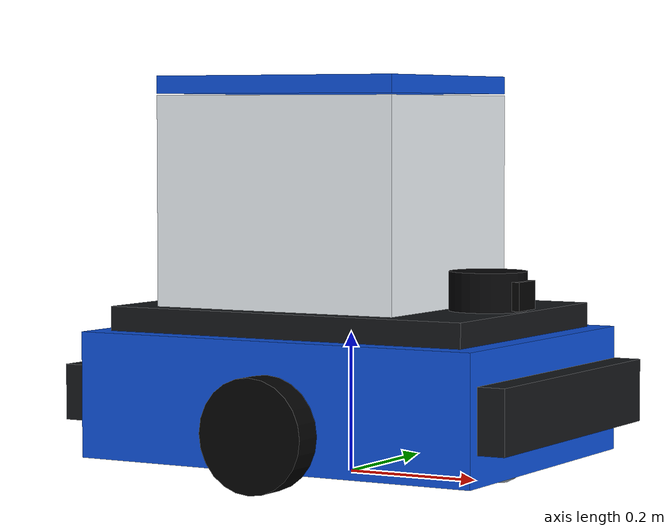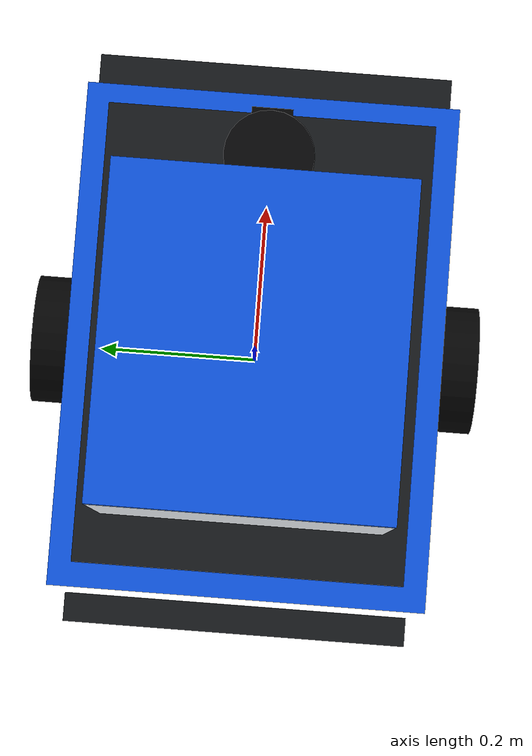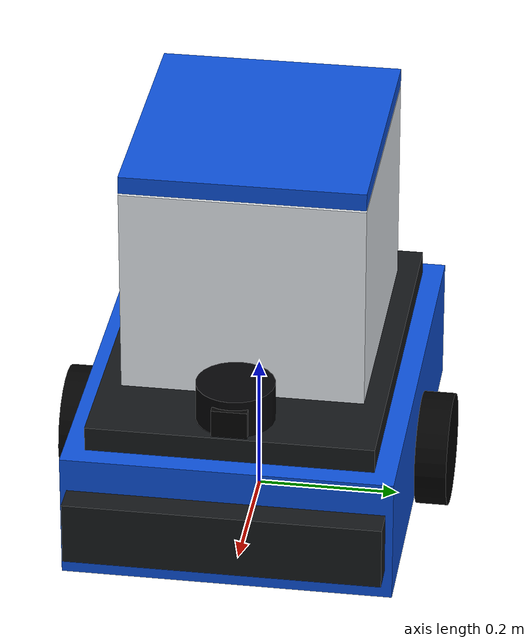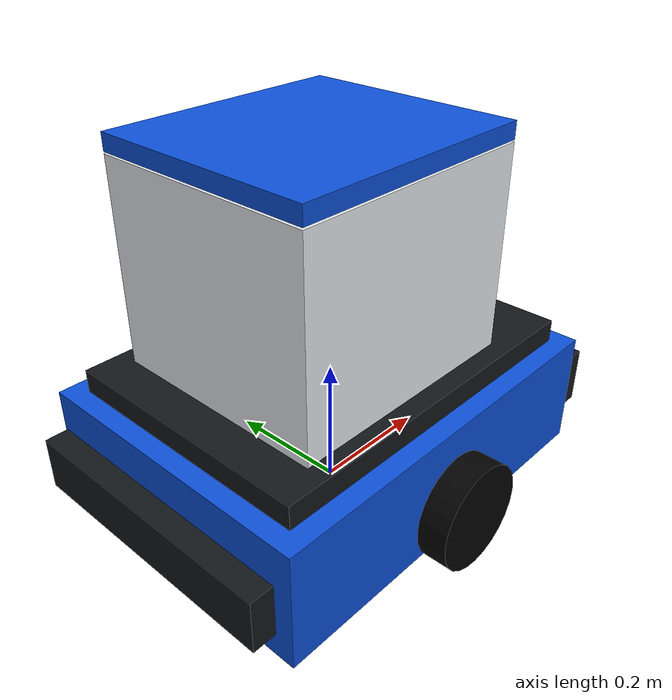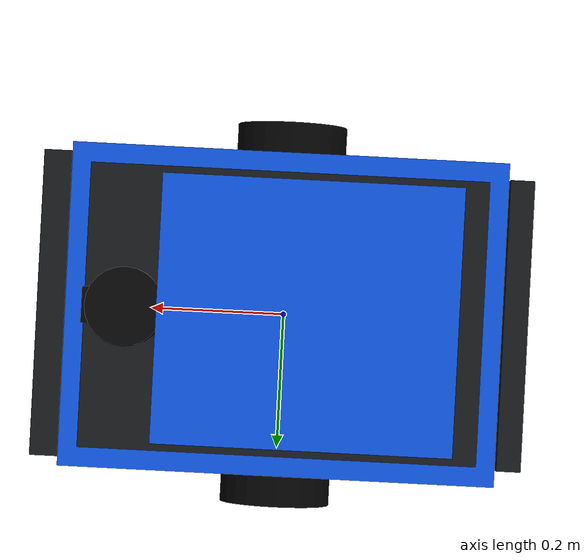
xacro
<?xml version="1.0"?>
<robot name="$(arg robot_name)" xmlns:xacro="http://www.ros.org/wiki/xacro">
  <xacro:arg name="robot_name" default="mrt_service_robot"/>
  <xacro:arg name="robot_role" default="delivery"/>
  <xacro:arg name="robot_color" default="mrt_blue"/>
  <xacro:arg name="payload_enabled" default="true"/>
  <xacro:arg name="mast_enabled" default="false"/>
  <xacro:arg name="camera_enabled" default="true"/>
  <xacro:arg name="use_gazebo_plugins" default="false"/>
  <xacro:arg name="lidar_x" default="0.22"/>
  <xacro:arg name="lidar_y" default="0"/>
  <xacro:arg name="lidar_z" default="0.045"/>

  <xacro:include filename="$(find mrt_description)/urdf/materials.xacro"/>
  <xacro:include filename="$(find mrt_description)/urdf/inertials.xacro"/>
  <xacro:include filename="$(find mrt_description)/urdf/base.xacro"/>
  <xacro:include filename="$(find mrt_description)/urdf/wheels.xacro"/>
  <xacro:include filename="$(find mrt_description)/urdf/sensors.xacro"/>
  <xacro:include filename="$(find mrt_description)/urdf/payload.xacro"/>
  <xacro:include filename="$(find mrt_description)/urdf/gazebo_plugins.xacro"/>

  <xacro:mrt_base robot_color="$(arg robot_color)"/>
  <xacro:mrt_wheels/>
  <xacro:mrt_lidar x="$(arg lidar_x)" y="$(arg lidar_y)" z="$(arg lidar_z)"/>
  <xacro:mrt_imu/>
  <xacro:mrt_camera enabled="$(arg camera_enabled)"/>
  <xacro:mrt_payload_box enabled="$(arg payload_enabled)" accent_color="$(arg robot_color)"/>
  <xacro:mrt_inspection_mast enabled="$(arg mast_enabled)" accent_color="$(arg robot_color)"/>

  <xacro:if value="$(arg use_gazebo_plugins)">
    <xacro:mrt_gazebo_plugins robot_name="$(arg robot_name)"/>
  </xacro:if>
</robot>

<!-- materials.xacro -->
<robot xmlns:xacro="http://www.ros.org/wiki/xacro">
  <material name="mrt_dark_grey">
    <color rgba="0.08 0.09 0.10 1.0"/>
  </material>

  <material name="mrt_light_grey">
    <color rgba="0.62 0.66 0.70 1.0"/>
  </material>

  <material name="mrt_black">
    <color rgba="0.01 0.01 0.01 1.0"/>
  </material>

  <material name="mrt_white">
    <color rgba="0.92 0.94 0.96 1.0"/>
  </material>

  <material name="mrt_blue">
    <color rgba="0.05 0.32 0.86 1.0"/>
  </material>

  <material name="mrt_orange">
    <color rgba="0.95 0.42 0.08 1.0"/>
  </material>

  <material name="mrt_green">
    <color rgba="0.05 0.65 0.36 1.0"/>
  </material>

  <material name="mrt_lidar">
    <color rgba="0.02 0.02 0.025 1.0"/>
  </material>

  <material name="mrt_glass">
    <color rgba="0.1 0.18 0.25 0.55"/>
  </material>
</robot>

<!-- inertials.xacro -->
<robot xmlns:xacro="http://www.ros.org/wiki/xacro">
  <xacro:macro name="box_inertia" params="mass x y z">
    <inertial>
      <mass value="${mass}"/>
      <inertia
        ixx="${mass * (y * y + z * z) / 12.0}"
        ixy="0.0"
        ixz="0.0"
        iyy="${mass * (x * x + z * z) / 12.0}"
        iyz="0.0"
        izz="${mass * (x * x + y * y) / 12.0}"/>
    </inertial>
  </xacro:macro>

  <xacro:macro name="cylinder_inertia_z" params="mass radius length">
    <inertial>
      <mass value="${mass}"/>
      <inertia
        ixx="${mass * (3.0 * radius * radius + length * length) / 12.0}"
        ixy="0.0"
        ixz="0.0"
        iyy="${mass * (3.0 * radius * radius + length * length) / 12.0}"
        iyz="0.0"
        izz="${mass * radius * radius / 2.0}"/>
    </inertial>
  </xacro:macro>

  <xacro:macro name="cylinder_inertia_x" params="mass radius length">
    <inertial>
      <mass value="${mass}"/>
      <inertia
        ixx="${mass * radius * radius / 2.0}"
        ixy="0.0"
        ixz="0.0"
        iyy="${mass * (3.0 * radius * radius + length * length) / 12.0}"
        iyz="0.0"
        izz="${mass * (3.0 * radius * radius + length * length) / 12.0}"/>
    </inertial>
  </xacro:macro>
</robot>

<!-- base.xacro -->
<robot xmlns:xacro="http://www.ros.org/wiki/xacro">
  <xacro:macro name="mrt_base" params="robot_color:=mrt_blue">
    <link name="base_footprint"/>

    <joint name="base_footprint_joint" type="fixed">
      <parent link="base_footprint"/>
      <child link="base_link"/>
      <origin xyz="0 0 0.095" rpy="0 0 0"/>
    </joint>

    <link name="base_link">
      <visual>
        <origin xyz="0 0 0.02" rpy="0 0 0"/>
        <geometry>
          <box size="0.62 0.46 0.18"/>
        </geometry>
        <material name="${robot_color}"/>
      </visual>
      <collision>
        <origin xyz="0 0 0.02" rpy="0 0 0"/>
        <geometry>
          <box size="0.62 0.46 0.18"/>
        </geometry>
      </collision>
      <xacro:box_inertia mass="16.0" x="0.62" y="0.46" z="0.18"/>
    </link>

    <link name="top_deck_link">
      <visual>
        <origin xyz="0 0 0" rpy="0 0 0"/>
        <geometry>
          <box size="0.56 0.40 0.035"/>
        </geometry>
        <material name="mrt_dark_grey"/>
      </visual>
      <collision>
        <origin xyz="0 0 0" rpy="0 0 0"/>
        <geometry>
          <box size="0.56 0.40 0.035"/>
        </geometry>
      </collision>
      <xacro:box_inertia mass="1.0" x="0.56" y="0.40" z="0.035"/>
    </link>

    <joint name="top_deck_joint" type="fixed">
      <parent link="base_link"/>
      <child link="top_deck_link"/>
      <origin xyz="0 0 0.128" rpy="0 0 0"/>
    </joint>

    <link name="front_bumper_link">
      <visual>
        <origin xyz="0 0 0" rpy="0 0 0"/>
        <geometry>
          <box size="0.04 0.44 0.09"/>
        </geometry>
        <material name="mrt_dark_grey"/>
      </visual>
      <collision>
        <origin xyz="0 0 0" rpy="0 0 0"/>
        <geometry>
          <box size="0.04 0.44 0.09"/>
        </geometry>
      </collision>
      <xacro:box_inertia mass="0.8" x="0.04" y="0.44" z="0.09"/>
    </link>

    <joint name="front_bumper_joint" type="fixed">
      <parent link="base_link"/>
      <child link="front_bumper_link"/>
      <origin xyz="0.335 0 0.02" rpy="0 0 0"/>
    </joint>

    <link name="rear_bumper_link">
      <visual>
        <origin xyz="0 0 0" rpy="0 0 0"/>
        <geometry>
          <box size="0.035 0.42 0.08"/>
        </geometry>
        <material name="mrt_dark_grey"/>
      </visual>
      <collision>
        <origin xyz="0 0 0" rpy="0 0 0"/>
        <geometry>
          <box size="0.035 0.42 0.08"/>
        </geometry>
      </collision>
      <xacro:box_inertia mass="0.6" x="0.035" y="0.42" z="0.08"/>
    </link>

    <joint name="rear_bumper_joint" type="fixed">
      <parent link="base_link"/>
      <child link="rear_bumper_link"/>
      <origin xyz="-0.335 0 0.02" rpy="0 0 0"/>
    </joint>
  </xacro:macro>
</robot>

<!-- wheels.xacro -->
<robot xmlns:xacro="http://www.ros.org/wiki/xacro">
  <xacro:macro name="mrt_wheels">
    <link name="left_wheel_link">
      <visual>
        <origin xyz="0 0 0" rpy="1.57079632679 0 0"/>
        <geometry>
          <cylinder radius="0.08" length="0.045"/>
        </geometry>
        <material name="mrt_black"/>
      </visual>
      <collision>
        <origin xyz="0 0 0" rpy="1.57079632679 0 0"/>
        <geometry>
          <cylinder radius="0.08" length="0.045"/>
        </geometry>
      </collision>
      <xacro:cylinder_inertia_x mass="0.75" radius="0.08" length="0.045"/>
    </link>

    <joint name="left_wheel_joint" type="continuous">
      <parent link="base_link"/>
      <child link="left_wheel_link"/>
      <origin xyz="0 0.255 -0.015" rpy="0 0 0"/>
      <axis xyz="0 1 0"/>
    </joint>

    <link name="right_wheel_link">
      <visual>
        <origin xyz="0 0 0" rpy="1.57079632679 0 0"/>
        <geometry>
          <cylinder radius="0.08" length="0.045"/>
        </geometry>
        <material name="mrt_black"/>
      </visual>
      <collision>
        <origin xyz="0 0 0" rpy="1.57079632679 0 0"/>
        <geometry>
          <cylinder radius="0.08" length="0.045"/>
        </geometry>
      </collision>
      <xacro:cylinder_inertia_x mass="0.75" radius="0.08" length="0.045"/>
    </link>

    <joint name="right_wheel_joint" type="continuous">
      <parent link="base_link"/>
      <child link="right_wheel_link"/>
      <origin xyz="0 -0.255 -0.015" rpy="0 0 0"/>
      <axis xyz="0 1 0"/>
    </joint>

    <link name="front_caster_link">
      <visual>
        <origin xyz="0 0 0" rpy="0 0 0"/>
        <geometry>
          <sphere radius="0.035"/>
        </geometry>
        <material name="mrt_light_grey"/>
      </visual>
      <collision>
        <origin xyz="0 0 0" rpy="0 0 0"/>
        <geometry>
          <sphere radius="0.035"/>
        </geometry>
      </collision>
      <xacro:cylinder_inertia_z mass="0.2" radius="0.035" length="0.035"/>
    </link>

    <joint name="front_caster_joint" type="fixed">
      <parent link="base_link"/>
      <child link="front_caster_link"/>
      <origin xyz="0.24 0 -0.06" rpy="0 0 0"/>
    </joint>

    <link name="rear_caster_link">
      <visual>
        <origin xyz="0 0 0" rpy="0 0 0"/>
        <geometry>
          <sphere radius="0.035"/>
        </geometry>
        <material name="mrt_light_grey"/>
      </visual>
      <collision>
        <origin xyz="0 0 0" rpy="0 0 0"/>
        <geometry>
          <sphere radius="0.035"/>
        </geometry>
      </collision>
      <xacro:cylinder_inertia_z mass="0.2" radius="0.035" length="0.035"/>
    </link>

    <joint name="rear_caster_joint" type="fixed">
      <parent link="base_link"/>
      <child link="rear_caster_link"/>
      <origin xyz="-0.24 0 -0.06" rpy="0 0 0"/>
    </joint>
  </xacro:macro>
</robot>

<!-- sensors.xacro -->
<robot xmlns:xacro="http://www.ros.org/wiki/xacro">
  <xacro:macro name="mrt_lidar" params="x:=0.22 y:=0 z:=0.045">
    <link name="lidar_link">
      <visual>
        <origin xyz="0 0 0" rpy="0 0 0"/>
        <geometry>
          <cylinder radius="0.055" length="0.055"/>
        </geometry>
        <material name="mrt_lidar"/>
      </visual>
      <collision>
        <origin xyz="0 0 0" rpy="0 0 0"/>
        <geometry>
          <cylinder radius="0.055" length="0.055"/>
        </geometry>
      </collision>
      <xacro:cylinder_inertia_z mass="0.25" radius="0.055" length="0.055"/>
    </link>

    <joint name="lidar_joint" type="fixed">
      <parent link="top_deck_link"/>
      <child link="lidar_link"/>
      <origin xyz="${x} ${y} ${z}" rpy="0 0 0"/>
    </joint>
  </xacro:macro>

  <xacro:macro name="mrt_imu">
    <link name="imu_link">
      <visual>
        <origin xyz="0 0 0" rpy="0 0 0"/>
        <geometry>
          <box size="0.05 0.04 0.02"/>
        </geometry>
        <material name="mrt_black"/>
      </visual>
      <collision>
        <origin xyz="0 0 0" rpy="0 0 0"/>
        <geometry>
          <box size="0.05 0.04 0.02"/>
        </geometry>
      </collision>
      <xacro:box_inertia mass="0.08" x="0.05" y="0.04" z="0.02"/>
    </link>

    <joint name="imu_joint" type="fixed">
      <parent link="base_link"/>
      <child link="imu_link"/>
      <origin xyz="0 0 0.125" rpy="0 0 0"/>
    </joint>
  </xacro:macro>

  <xacro:macro name="mrt_camera" params="enabled:=true">
    <xacro:if value="${enabled}">
      <link name="camera_link">
        <visual>
          <origin xyz="0 0 0" rpy="0 0 0"/>
          <geometry>
            <box size="0.07 0.05 0.04"/>
          </geometry>
          <material name="mrt_black"/>
        </visual>
        <collision>
          <origin xyz="0 0 0" rpy="0 0 0"/>
          <geometry>
            <box size="0.07 0.05 0.04"/>
          </geometry>
        </collision>
        <xacro:box_inertia mass="0.12" x="0.07" y="0.05" z="0.04"/>
      </link>

      <joint name="camera_joint" type="fixed">
        <parent link="top_deck_link"/>
        <child link="camera_link"/>
        <origin xyz="0.245 0 0.04" rpy="0 0 0"/>
      </joint>
    </xacro:if>
  </xacro:macro>
</robot>

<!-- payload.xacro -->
<robot xmlns:xacro="http://www.ros.org/wiki/xacro">
  <xacro:macro name="mrt_payload_box" params="enabled:=true accent_color:=mrt_blue">
    <xacro:if value="${enabled}">
      <link name="payload_box_link">
        <visual>
          <origin xyz="0 0 0" rpy="0 0 0"/>
          <geometry>
            <box size="0.38 0.34 0.30"/>
          </geometry>
          <material name="mrt_white"/>
        </visual>
        <collision>
          <origin xyz="0 0 0" rpy="0 0 0"/>
          <geometry>
            <box size="0.38 0.34 0.30"/>
          </geometry>
        </collision>
        <xacro:box_inertia mass="3.5" x="0.38" y="0.34" z="0.30"/>
      </link>

      <joint name="payload_box_joint" type="fixed">
        <parent link="top_deck_link"/>
        <child link="payload_box_link"/>
        <origin xyz="-0.03 0 0.167" rpy="0 0 0"/>
      </joint>

      <link name="payload_lid_link">
        <visual>
          <origin xyz="0 0 0" rpy="0 0 0"/>
          <geometry>
            <box size="0.38 0.34 0.025"/>
          </geometry>
          <material name="${accent_color}"/>
        </visual>
        <collision>
          <origin xyz="0 0 0" rpy="0 0 0"/>
          <geometry>
            <box size="0.38 0.34 0.025"/>
          </geometry>
        </collision>
        <xacro:box_inertia mass="0.4" x="0.38" y="0.34" z="0.025"/>
      </link>

      <joint name="payload_lid_joint" type="fixed">
        <parent link="payload_box_link"/>
        <child link="payload_lid_link"/>
        <origin xyz="0 0 0.165" rpy="0 0 0"/>
      </joint>
    </xacro:if>
  </xacro:macro>

  <xacro:macro name="mrt_inspection_mast" params="enabled:=true accent_color:=mrt_orange">
    <xacro:if value="${enabled}">
      <link name="mast_base_link">
        <visual>
          <origin xyz="0 0 0" rpy="0 0 0"/>
          <geometry>
            <box size="0.16 0.12 0.06"/>
          </geometry>
          <material name="${accent_color}"/>
        </visual>
        <collision>
          <origin xyz="0 0 0" rpy="0 0 0"/>
          <geometry>
            <box size="0.16 0.12 0.06"/>
          </geometry>
        </collision>
        <xacro:box_inertia mass="0.5" x="0.16" y="0.12" z="0.06"/>
      </link>

      <joint name="mast_base_joint" type="fixed">
        <parent link="top_deck_link"/>
        <child link="mast_base_link"/>
        <origin xyz="-0.08 0 0.047" rpy="0 0 0"/>
      </joint>

      <link name="mast_link">
        <visual>
          <origin xyz="0 0 0" rpy="0 0 0"/>
          <geometry>
            <cylinder radius="0.018" length="0.36"/>
          </geometry>
          <material name="mrt_dark_grey"/>
        </visual>
        <collision>
          <origin xyz="0 0 0" rpy="0 0 0"/>
          <geometry>
            <cylinder radius="0.018" length="0.36"/>
          </geometry>
        </collision>
        <xacro:cylinder_inertia_z mass="0.25" radius="0.018" length="0.36"/>
      </link>

      <joint name="mast_joint" type="fixed">
        <parent link="mast_base_link"/>
        <child link="mast_link"/>
        <origin xyz="0 0 0.21" rpy="0 0 0"/>
      </joint>

      <link name="sensor_head_link">
        <visual>
          <origin xyz="0 0 0" rpy="0 0 0"/>
          <geometry>
            <box size="0.14 0.08 0.07"/>
          </geometry>
          <material name="${accent_color}"/>
        </visual>
        <collision>
          <origin xyz="0 0 0" rpy="0 0 0"/>
          <geometry>
            <box size="0.14 0.08 0.07"/>
          </geometry>
        </collision>
        <xacro:box_inertia mass="0.35" x="0.14" y="0.08" z="0.07"/>
      </link>

      <joint name="sensor_head_joint" type="fixed">
        <parent link="mast_link"/>
        <child link="sensor_head_link"/>
        <origin xyz="0.045 0 0.205" rpy="0 0 0"/>
      </joint>

      <link name="status_light_link">
        <visual>
          <origin xyz="0 0 0" rpy="0 0 0"/>
          <geometry>
            <cylinder radius="0.035" length="0.025"/>
          </geometry>
          <material name="${accent_color}"/>
        </visual>
        <collision>
          <origin xyz="0 0 0" rpy="0 0 0"/>
          <geometry>
            <cylinder radius="0.035" length="0.025"/>
          </geometry>
        </collision>
        <xacro:cylinder_inertia_z mass="0.08" radius="0.035" length="0.025"/>
      </link>

      <joint name="status_light_joint" type="fixed">
        <parent link="sensor_head_link"/>
        <child link="status_light_link"/>
        <origin xyz="0 0 0.055" rpy="0 0 0"/>
      </joint>
    </xacro:if>
  </xacro:macro>
</robot>
